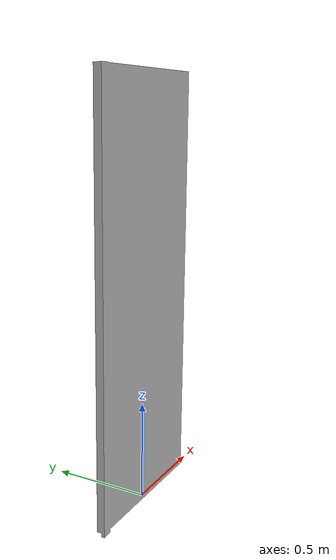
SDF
<?xml version="1.0"?>
<sdf version="1.4">
<model name="dvere_80_bezkliky">
	<pose>0 0 0 0 0 0</pose>
	<static>true</static>
	<link name="dvere_80_bezkliky_collision">
		<collision name="dvere_80_bezkliky_collision">
		<geometry>
			<mesh>
				<uri>model://dvere_80_bezkliky/meshes/model.dae</uri>

			</mesh>
		</geometry>
		</collision>
	<visual name="dvere_80_bezkliky_mesh">
	<cast_shadows>false</cast_shadows>
		<geometry>
			<mesh>
				<uri> model://dvere_80_bezkliky/meshes/model.dae</uri>

			</mesh>
		</geometry>
		<material>
		<script>
			<uri> model://dvere_80_bezkliky/material/scripts</uri>
			<uri> model://dvere_80_bezkliky/material/textures</uri>
			<name>dvere_80_bezkliky/Diffuse</name>
		</script>
		</material>

	</visual>
</link>
</model>
</sdf>
